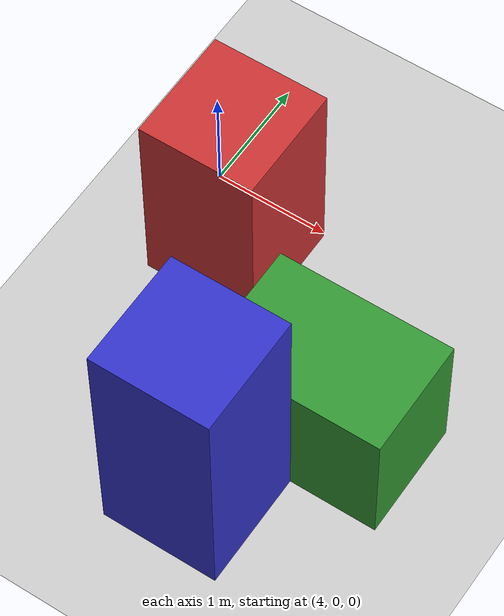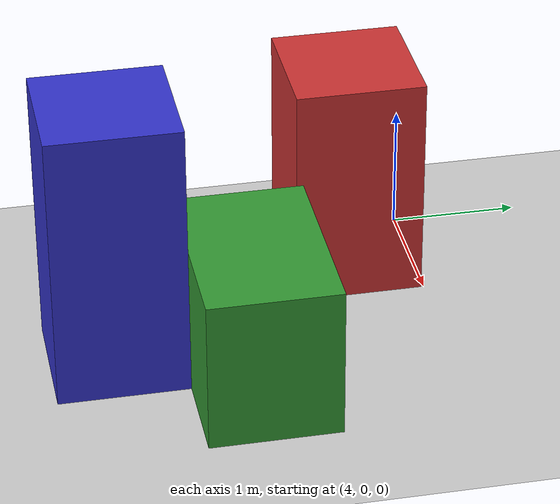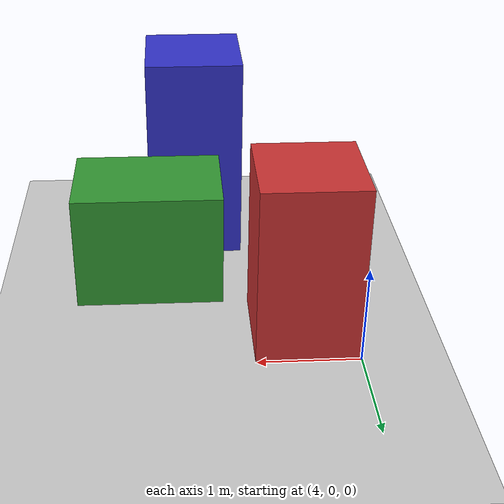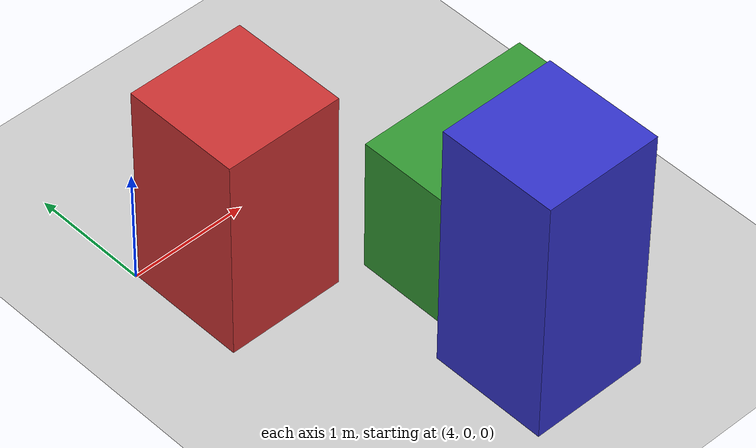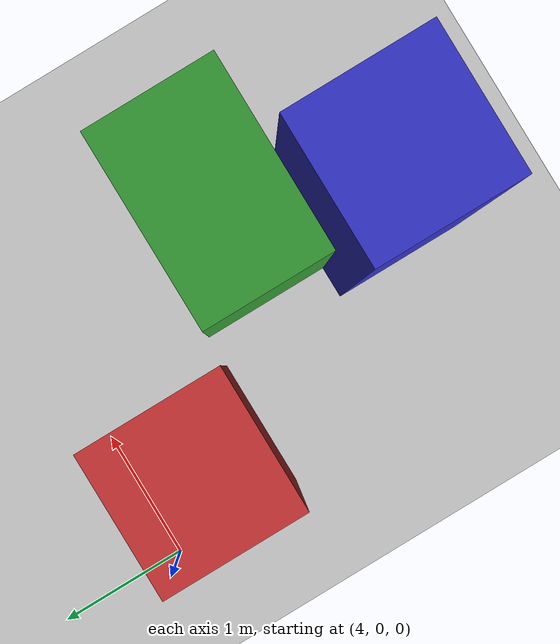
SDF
<?xml version="1.0" ?>
<sdf version="1.5">
  <world name="default">
    <magnetic_field>6.0e-5 0 0</magnetic_field>
    <include>
      <uri>model://sun</uri>
    </include>
    <include>
      <uri>model://ground_plane</uri>
    </include>
    <include>
      <uri>model://asphalt_plane</uri>
    </include>
    <!-- T1-W2 路径A:物理步长 4ms→2ms(250→500Hz,lockstep 合法倍数),mavlink 节拍细化后 HIGHRES_IMU 5000μs 请求可达 200Hz。CPU 开销翻倍,冒烟验证实时性。 -->
    <physics name="default_physics" default="0" type="ode">
      <gravity>0 0 -9.8066</gravity>
      <ode>
        <solver>
          <type>quick</type>
          <iters>10</iters>
          <sor>1.3</sor>
          <use_dynamic_moi_rescaling>0</use_dynamic_moi_rescaling>
        </solver>
        <constraints>
          <cfm>0</cfm>
          <erp>0.2</erp>
          <contact_max_correcting_vel>100</contact_max_correcting_vel>
          <contact_surface_layer>0.001</contact_surface_layer>
        </constraints>
      </ode>
      <max_step_size>0.002</max_step_size>
      <real_time_factor>1</real_time_factor>
      <real_time_update_rate>500</real_time_update_rate>
    </physics>
    <scene>
      <ambient>0.4 0.4 0.4 1</ambient>
      <background>0.7 0.7 0.7 1</background>
      <shadows>0</shadows>
    </scene>

    <model name="box_A">
      <pose>4.51 -0.52 0.9 0 0 0</pose>
      <static>true</static>
      <link name="link">
        <collision name="collision">
          <geometry><box><size>1.0 1.0 1.8</size></box></geometry>
        </collision>
        <visual name="visual">
          <geometry><box><size>1.0 1.0 1.8</size></box></geometry>
          <material>
            <ambient>0.8 0.2 0.2 1</ambient>
            <diffuse>0.8 0.2 0.2 1</diffuse>
          </material>
        </visual>
      </link>
    </model>

    <model name="box_B">
      <pose>6.01 -1.52 0.6 0 0 0</pose>
      <static>true</static>
      <link name="link">
        <collision name="collision">
          <geometry><box><size>1.5 1.0 1.2</size></box></geometry>
        </collision>
        <visual name="visual">
          <geometry><box><size>1.5 1.0 1.2</size></box></geometry>
          <material>
            <ambient>0.2 0.6 0.2 1</ambient>
            <diffuse>0.2 0.6 0.2 1</diffuse>
          </material>
        </visual>
      </link>
    </model>

    <model name="box_C">
      <pose>5.51 -2.52 1.1 0 0 0</pose>
      <static>true</static>
      <link name="link">
        <collision name="collision">
          <geometry><box><size>1.0 1.0 2.2</size></box></geometry>
        </collision>
        <visual name="visual">
          <geometry><box><size>1.0 1.0 2.2</size></box></geometry>
          <material>
            <ambient>0.2 0.2 0.8 1</ambient>
            <diffuse>0.2 0.2 0.8 1</diffuse>
          </material>
        </visual>
      </link>
    </model>
  </world>
</sdf>
